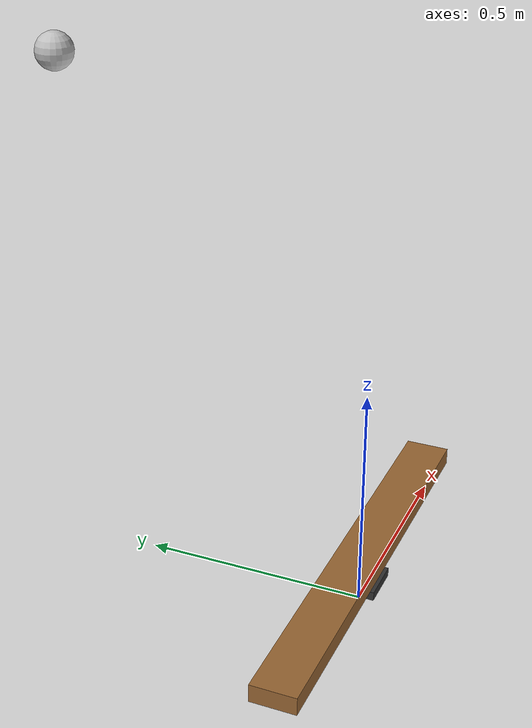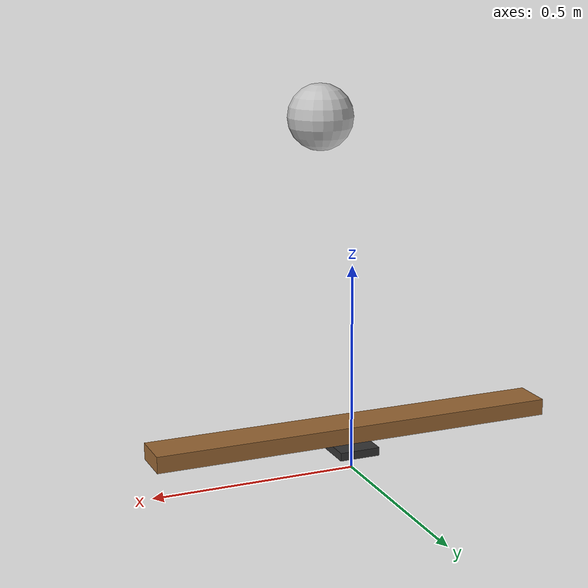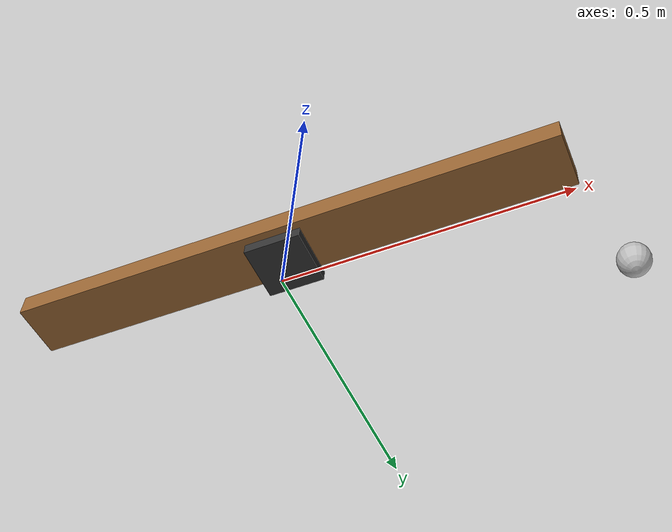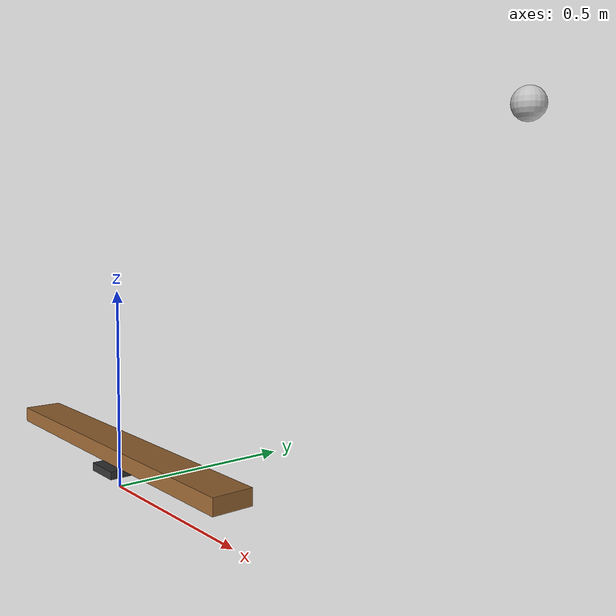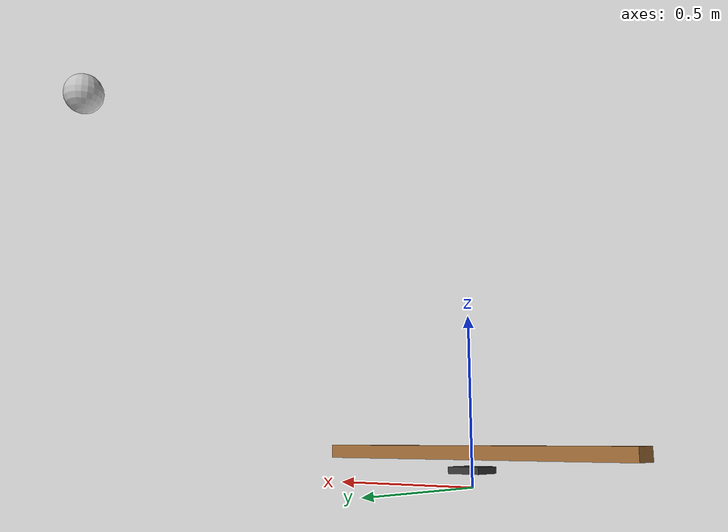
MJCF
<mujoco model="seesaw_with_cubes">
  <option integrator="RK4" density="1.225" viscosity="1.8e-5"/>

  <compiler inertiafromgeom="true" meshdir="assets" autolimits="true"/>

    <worldbody>
        <!-- Ground plane -->
        <!-- See-saw base (pivot point) -->
        <body name="seesaw_base" pos="0 0 0.05">
            <geom type="box" size="0.05 0.05 0.01" rgba="0.2 0.2 0.2 1"/>
            <!-- See-saw plank -->
            <body name="seesaw_plank" pos="0 0 0.05">
                <joint name="seesaw_hinge" type="hinge" pos="0 0 0" axis="0 1 0" range="-30 30" damping="0.1"/>
                <geom type="box" size="0.5 0.05 0.02" rgba="0.6 0.4 0.2 1"/>
                <!-- Left Cube -->
            </body>
        </body>

        <body name="left_ball" pos="0.5 1 1">
            <freejoint />
            <inertial pos="0 0 0" mass="0.005" diaginertia="5.2083e-8 3.7501e-5 3.7542e-5"/>
            <geom type="sphere" size="0.05" rgba="0.75 0.75 0.75 1"/>
        </body>
    </worldbody>

    <!-- Actuator to control the hinge joint -->
    <actuator>
        <motor joint="seesaw_hinge" ctrlrange="-0.161 0.161" gear="0.0002"/>
    </actuator>
</mujoco>
